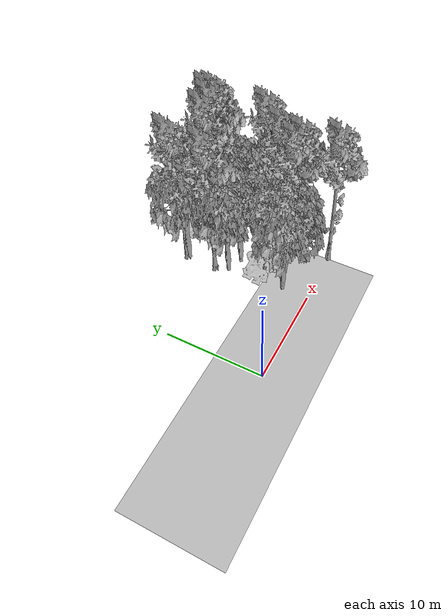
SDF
<sdf version="1.7">
 <world name="default">
  <model name="ground_plane">
   <static>1</static>
   <link name="link">
    <collision name="collision">
     <pose>-50 0 0 0 -0 0</pose>
     <geometry><plane><normal>0 0 1</normal><size>100 100</size></plane></geometry>
     <surface><contact><ode><min_depth>0.01</min_depth><max_vel>0</max_vel></ode></contact></surface>
    </collision>
    <visual name="grass">
     <cast_shadows>0</cast_shadows>
     <geometry>
      <mesh>
       <scale>0.5814285714285714 0.18142857142857144 0.1</scale>
       <uri>file://grass_plane/meshes/grass_plane.dae</uri>
      </mesh>
     </geometry>
    </visual>
   </link>
  </model>
  <model name="Tree 7">
   <static>1</static>
   <pose>15.129979773164116 5.504716589142198 0 1.57079 -0 0</pose>
   <link name="link">
    <collision name="collision">
     <geometry><mesh><scale>3.5 5 3.5</scale><uri>model://tree_9/meshes/tree_9.obj</uri></mesh></geometry>
    </collision>
    <visual name="visual">
     <geometry><mesh><scale>3.5 5 3.5</scale><uri>model://tree_9/meshes/tree_9.obj</uri></mesh></geometry>
    </visual>
   </link>
  </model>
  <model name="Tree 31">
   <static>1</static>
   <pose>9.62641194046531 8.738126387564794 0 1.57079 -0 0</pose>
   <link name="link">
    <collision name="collision">
     <geometry><mesh><scale>3.5 5 3.5</scale><uri>model://tree_2/meshes/tree_2.obj</uri></mesh></geometry>
    </collision>
    <visual name="visual">
     <geometry><mesh><scale>3.5 5 3.5</scale><uri>model://tree_2/meshes/tree_2.obj</uri></mesh></geometry>
    </visual>
   </link>
  </model>
  <model name="Tree 68">
   <static>1</static>
   <pose>15.186232361896664 4.724036120609785 0 1.57079 -0 0</pose>
   <link name="link">
    <collision name="collision">
     <geometry><mesh><scale>3 2 3</scale><uri>model://tree_3/meshes/tree_3.obj</uri></mesh></geometry>
    </collision>
    <visual name="visual">
     <geometry><mesh><scale>3 2 3</scale><uri>model://tree_3/meshes/tree_3.obj</uri></mesh></geometry>
    </visual>
   </link>
  </model>
  <model name="Tree 70">
   <static>1</static>
   <pose>15.391407586992202 11.473836510191429 0 1.57079 -0 0</pose>
   <link name="link">
    <collision name="collision">
     <geometry><mesh><scale>3.5 5 3.5</scale><uri>model://tree_2/meshes/tree_2.obj</uri></mesh></geometry>
    </collision>
    <visual name="visual">
     <geometry><mesh><scale>3.5 5 3.5</scale><uri>model://tree_2/meshes/tree_2.obj</uri></mesh></geometry>
    </visual>
   </link>
  </model>
  <model name="Tree 73">
   <static>1</static>
   <pose>16.82307370953653 13.932413472520214 0 1.57079 -0 0</pose>
   <link name="link">
    <collision name="collision">
     <geometry><mesh><scale>3.5 5 3.5</scale><uri>model://tree_9/meshes/tree_9.obj</uri></mesh></geometry>
    </collision>
    <visual name="visual">
     <geometry><mesh><scale>3.5 5 3.5</scale><uri>model://tree_9/meshes/tree_9.obj</uri></mesh></geometry>
    </visual>
   </link>
  </model>
  <model name="Tree 129">
   <static>1</static>
   <pose>17.130087567508596 13.339105836048994 0 1.57079 -0 0</pose>
   <link name="link">
    <collision name="collision">
     <geometry><mesh><scale>3.5 5 3.5</scale><uri>model://tree_9/meshes/tree_9.obj</uri></mesh></geometry>
    </collision>
    <visual name="visual">
     <geometry><mesh><scale>3.5 5 3.5</scale><uri>model://tree_9/meshes/tree_9.obj</uri></mesh></geometry>
    </visual>
   </link>
  </model>
  <model name="Tree 146">
   <static>1</static>
   <pose>15.76716830714237 0.1980404297972811 0 1.57079 -0 0</pose>
   <link name="link">
    <collision name="collision">
     <geometry><mesh><scale>3.5 5 3.5</scale><uri>model://tree_9/meshes/tree_9.obj</uri></mesh></geometry>
    </collision>
    <visual name="visual">
     <geometry><mesh><scale>3.5 5 3.5</scale><uri>model://tree_9/meshes/tree_9.obj</uri></mesh></geometry>
    </visual>
   </link>
  </model>
  <model name="Tree 161">
   <static>1</static>
   <pose>9.695603297702533 13.777058998648197 0 1.57079 -0 0</pose>
   <link name="link">
    <collision name="collision">
     <geometry><mesh><scale>3.5 5 3.5</scale><uri>model://tree_9/meshes/tree_9.obj</uri></mesh></geometry>
    </collision>
    <visual name="visual">
     <geometry><mesh><scale>3.5 5 3.5</scale><uri>model://tree_9/meshes/tree_9.obj</uri></mesh></geometry>
    </visual>
   </link>
  </model>
  <model name="Tree 165">
   <static>1</static>
   <pose>14.869681523419374 3.39131713447998 0 1.57079 -0 0</pose>
   <link name="link">
    <collision name="collision">
     <geometry><mesh><scale>3.5 5 3.5</scale><uri>model://tree_9/meshes/tree_9.obj</uri></mesh></geometry>
    </collision>
    <visual name="visual">
     <geometry><mesh><scale>3.5 5 3.5</scale><uri>model://tree_9/meshes/tree_9.obj</uri></mesh></geometry>
    </visual>
   </link>
  </model>
  <model name="Tree 176">
   <static>1</static>
   <pose>11.275322963949577 8.179518117050677 0 1.57079 -0 0</pose>
   <link name="link">
    <collision name="collision">
     <geometry><mesh><scale>3.5 5 3.5</scale><uri>model://tree_2/meshes/tree_2.obj</uri></mesh></geometry>
    </collision>
    <visual name="visual">
     <geometry><mesh><scale>3.5 5 3.5</scale><uri>model://tree_2/meshes/tree_2.obj</uri></mesh></geometry>
    </visual>
   </link>
  </model>
  <model name="Tree 179">
   <static>1</static>
   <pose>15.869021720896427 13.257823415536603 0 1.57079 -0 0</pose>
   <link name="link">
    <collision name="collision">
     <geometry><mesh><scale>3.5 5 3.5</scale><uri>model://tree_9/meshes/tree_9.obj</uri></mesh></geometry>
    </collision>
    <visual name="visual">
     <geometry><mesh><scale>3.5 5 3.5</scale><uri>model://tree_9/meshes/tree_9.obj</uri></mesh></geometry>
    </visual>
   </link>
  </model>
  <model name="Tree 212">
   <static>1</static>
   <pose>10.78705737856096 5.318151774020912 0 1.57079 -0 0</pose>
   <link name="link">
    <collision name="collision">
     <geometry><mesh><scale>3 2 3</scale><uri>model://tree_3/meshes/tree_3.obj</uri></mesh></geometry>
    </collision>
    <visual name="visual">
     <geometry><mesh><scale>3 2 3</scale><uri>model://tree_3/meshes/tree_3.obj</uri></mesh></geometry>
    </visual>
   </link>
  </model>
  <model name="Tree 234">
   <static>1</static>
   <pose>14.080866777696826 10.443006170314906 0 1.57079 -0 0</pose>
   <link name="link">
    <collision name="collision">
     <geometry><mesh><scale>3.5 5 3.5</scale><uri>model://tree_2/meshes/tree_2.obj</uri></mesh></geometry>
    </collision>
    <visual name="visual">
     <geometry><mesh><scale>3.5 5 3.5</scale><uri>model://tree_2/meshes/tree_2.obj</uri></mesh></geometry>
    </visual>
   </link>
  </model>
  <model name="Tree 272">
   <static>1</static>
   <pose>9.886999554702903 2.739790909999975 0 1.57079 -0 0</pose>
   <link name="link">
    <collision name="collision">
     <geometry><mesh><scale>3.5 5 3.5</scale><uri>model://tree_2/meshes/tree_2.obj</uri></mesh></geometry>
    </collision>
    <visual name="visual">
     <geometry><mesh><scale>3.5 5 3.5</scale><uri>model://tree_2/meshes/tree_2.obj</uri></mesh></geometry>
    </visual>
   </link>
  </model>
  <model name="Tree 314">
   <static>1</static>
   <pose>14.13749855337523 12.954243087182665 0 1.57079 -0 0</pose>
   <link name="link">
    <collision name="collision">
     <geometry><mesh><scale>3.5 5 3.5</scale><uri>model://tree_9/meshes/tree_9.obj</uri></mesh></geometry>
    </collision>
    <visual name="visual">
     <geometry><mesh><scale>3.5 5 3.5</scale><uri>model://tree_9/meshes/tree_9.obj</uri></mesh></geometry>
    </visual>
   </link>
  </model>
  <model name="Tree 353">
   <static>1</static>
   <pose>12.5392414949739 10.992820308976594 0 1.57079 -0 0</pose>
   <link name="link">
    <collision name="collision">
     <geometry><mesh><scale>3.5 5 3.5</scale><uri>model://tree_2/meshes/tree_2.obj</uri></mesh></geometry>
    </collision>
    <visual name="visual">
     <geometry><mesh><scale>3.5 5 3.5</scale><uri>model://tree_2/meshes/tree_2.obj</uri></mesh></geometry>
    </visual>
   </link>
  </model>
  <model name="Tree 362">
   <static>1</static>
   <pose>11.881368662870614 3.3915130315688202 0 1.57079 -0 0</pose>
   <link name="link">
    <collision name="collision">
     <geometry><mesh><scale>3.5 5 3.5</scale><uri>model://tree_2/meshes/tree_2.obj</uri></mesh></geometry>
    </collision>
    <visual name="visual">
     <geometry><mesh><scale>3.5 5 3.5</scale><uri>model://tree_2/meshes/tree_2.obj</uri></mesh></geometry>
    </visual>
   </link>
  </model>
  <model name="Tree 394">
   <static>1</static>
   <pose>12.649802620551533 14.190716316037957 0 1.57079 -0 0</pose>
   <link name="link">
    <collision name="collision">
     <geometry><mesh><scale>4 2.5 4</scale><uri>model://tree_1/meshes/tree_1.obj</uri></mesh></geometry>
    </collision>
    <visual name="visual">
     <geometry><mesh><scale>4 2.5 4</scale><uri>model://tree_1/meshes/tree_1.obj</uri></mesh></geometry>
    </visual>
   </link>
  </model>
  <model name="Tree 407">
   <static>1</static>
   <pose>9.39709167225228 13.251487515980042 0 1.57079 -0 0</pose>
   <link name="link">
    <collision name="collision">
     <geometry><mesh><scale>3.5 5 3.5</scale><uri>model://tree_2/meshes/tree_2.obj</uri></mesh></geometry>
    </collision>
    <visual name="visual">
     <geometry><mesh><scale>3.5 5 3.5</scale><uri>model://tree_2/meshes/tree_2.obj</uri></mesh></geometry>
    </visual>
   </link>
  </model>
  <model name="Tree 429">
   <static>1</static>
   <pose>17.167136983615706 7.890165499488326 0 1.57079 -0 0</pose>
   <link name="link">
    <collision name="collision">
     <geometry><mesh><scale>3.5 5 3.5</scale><uri>model://tree_9/meshes/tree_9.obj</uri></mesh></geometry>
    </collision>
    <visual name="visual">
     <geometry><mesh><scale>3.5 5 3.5</scale><uri>model://tree_9/meshes/tree_9.obj</uri></mesh></geometry>
    </visual>
   </link>
  </model>
  <model name="Tree 453">
   <static>1</static>
   <pose>16.410333271157057 7.717736029350011 0 1.57079 -0 0</pose>
   <link name="link">
    <collision name="collision">
     <geometry><mesh><scale>3.5 5 3.5</scale><uri>model://tree_2/meshes/tree_2.obj</uri></mesh></geometry>
    </collision>
    <visual name="visual">
     <geometry><mesh><scale>3.5 5 3.5</scale><uri>model://tree_2/meshes/tree_2.obj</uri></mesh></geometry>
    </visual>
   </link>
  </model>
  <model name="Tree 472">
   <static>1</static>
   <pose>9.610872969282084 10.317266887214583 0 1.57079 -0 0</pose>
   <link name="link">
    <collision name="collision">
     <geometry><mesh><scale>3.5 5 3.5</scale><uri>model://tree_9/meshes/tree_9.obj</uri></mesh></geometry>
    </collision>
    <visual name="visual">
     <geometry><mesh><scale>3.5 5 3.5</scale><uri>model://tree_9/meshes/tree_9.obj</uri></mesh></geometry>
    </visual>
   </link>
  </model>
  <model name="Tree 488">
   <static>1</static>
   <pose>13.76560756158839 3.578447565641852 0 1.57079 -0 0</pose>
   <link name="link">
    <collision name="collision">
     <geometry><mesh><scale>3.5 5 3.5</scale><uri>model://tree_9/meshes/tree_9.obj</uri></mesh></geometry>
    </collision>
    <visual name="visual">
     <geometry><mesh><scale>3.5 5 3.5</scale><uri>model://tree_9/meshes/tree_9.obj</uri></mesh></geometry>
    </visual>
   </link>
  </model>
 </world>
</sdf>
